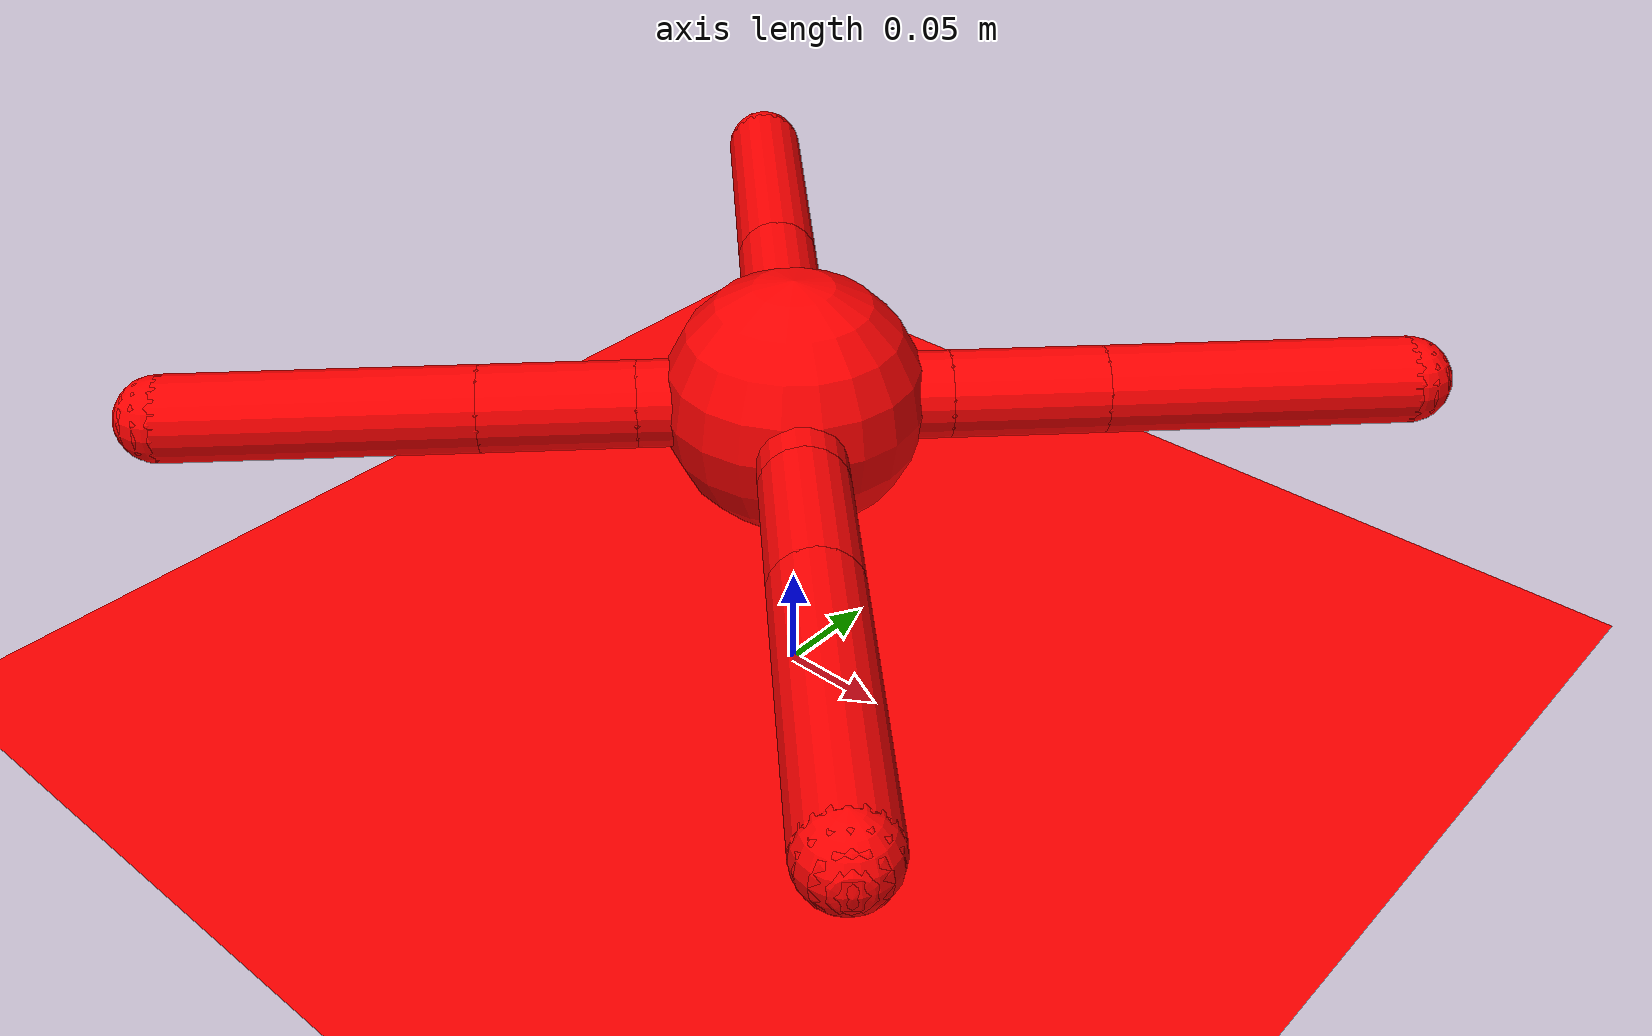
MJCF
<mujoco model="ant_tiny">
  <option timestep="0.09"/>
  <size njmax="3000" nconmax="1000"/>
  <default>
    <joint armature="1" damping="1" limited="true"/>
    <geom condim="3" density="5.0" friction="0.75 0.01 0.01"  margin="0.01" rgba="1 0 0 1" contype="0" conaffinity="0"/>
    <motor  ctrllimited="true" ctrlrange="-1.0 1.0" gear="70"/>
    <site size="0.2" type="sphere" rgba="0 0 1 0"/>
  </default>

  <worldbody>

    <geom name="floor" size="5 5 0.1" conaffinity="1" type="plane" condim="3"/>

    <body name="robot" pos="0 0 0.15">
      <site name="robot" rgba="1 0 0 .01"/>
      <camera name="vision" pos=".125 0 .2" xyaxes="0 -1 0 .4 0 1" fovy="100"/>
      <geom name="robot" pos="0 0 0" size="0.06" type="sphere"/>
      <joint armature="0" axis="1 0 0" damping="0.1" limited="false" name="robot_x" pos="0 0 0" stiffness="0" type="slide"/>
      <joint armature="0" axis="0 0 1" damping="0.01" limited="false" name="robot_z" pos="0 0 0" stiffness="0.1" type="hinge"/>
      <joint armature="0" axis="0 1 0" damping="0.1" limited="false" name="robot_y" pos="0 0 0" stiffness="0" type="slide"/>
      <body name="front_left_leg" pos="0 0 0">
        <geom fromto="0.0 0.0 0.0 0.05 0.05 0.0" name="aux_1_geom" size="0.02" type="capsule"/>
        <body name="aux_1" pos="0.05 0.05 0">
          <joint axis="0 0 1" name="hip_1" pos="0.0 0.0 0.0" range="-30 30" type="hinge"/>
          <geom fromto="0.0 0.0 0.0 0.05 0.05 0.0" name="front_left_leg_geom" size="0.02" type="capsule"/>
          <body pos="0.05 0.05 0">
            <joint axis="-1 1 0" name="ankle_1" pos="0.0 0.0 0.0" range="30 70" type="hinge"/>
            <geom fromto="0.0 0.0 0.0 0.1 0.1 0.0" name="front_left_ankle_geom" size="0.02" type="capsule"/>
            <geom type="sphere" pos="0.1 0.1 0.0" size="0.02" contype="1" conaffinity="0" />
            <site name="ankle_1a" pos="0 0 0"/>
            <site name="ankle_1b" pos="0.1 0.1 0.0"/>
          </body>
        </body>
      </body>

      <body name="front_right_leg" pos="0 0 0">
        <geom fromto="0.0 0.0 0.0 -0.05 0.05 0.0" name="aux_2_geom" size="0.02" type="capsule"/>
        <body name="aux_2" pos="-0.05 0.05 0">
          <joint axis="0 0 1" name="hip_2" pos="0.0 0.0 0.0" range="-30 30" type="hinge"/>
          <geom fromto="0.0 0.0 0.0 -0.05 0.05 0.0" name="front_right_leg_geom" size="0.02" type="capsule"/>
          <body pos="-0.05 0.05 0">
            <joint axis="1 1 0" name="ankle_2" pos="0.0 0.0 0.0" range="-70 -30" type="hinge"/>
            <geom fromto="0.0 0.0 0.0 -0.1 0.1 0.0" name="front_right_ankle_geom" size="0.02" type="capsule"/>
            <geom type="sphere" pos="-0.1 0.1 0.0" size="0.02" contype="1" conaffinity="0" />
            <site name="ankle_2a" pos="0 0 0"/>
            <site name="ankle_2b" pos="-0.1 0.1 0.0"/>
          </body>
        </body>
      </body>

      <body name="back_left_leg" pos="0 0 0">
        <geom fromto="0.0 0.0 0.0 -0.05 -0.05 0.0" name="aux_3_geom" size="0.02" type="capsule"/>
        <body name="aux_3" pos="-0.05 -0.05 0">
          <joint axis="0 0 1" name="hip_3" pos="0.0 0.0 0.0" range="-30 30" type="hinge"/>
          <geom fromto="0.0 0.0 0.0 -0.05 -0.05 0.0" name="back_left_leg_geom" size="0.02" type="capsule"/>
          <body pos="-0.05 -0.05 0">
            <joint axis="-1 1 0" name="ankle_3" pos="0.0 0.0 0.0" range="-70 -30" type="hinge"/>
            <geom fromto="0.0 0.0 0.0 -0.1 -0.1 0.0" name="back_left_ankle_geom" size="0.02" type="capsule"/>
            <geom type="sphere" pos="-0.1 -0.1 0.0" size="0.02" contype="1" conaffinity="0" />
            <site name="ankle_3a" pos="0 0 0"/>
            <site name="ankle_3b" pos="-0.1 -0.1 0.0"/>
          </body>
        </body>
      </body>
      <body name="back_right_leg" pos="0 0 0">
        <geom fromto="0.0 0.0 0.0 0.05 -0.05 0.0" name="aux_4_geom" size="0.02" type="capsule"/>
        <body name="aux_4" pos="0.05 -0.05 0">
          <joint axis="0 0 1" name="hip_4" pos="0.0 0.0 0.0" range="-30 30" type="hinge"/>
          <geom fromto="0.0 0.0 0.0 0.05 -0.05 0.0" name="back_right_leg_geom" size="0.02" type="capsule"/>
          <body pos="0.05 -0.05 0">
            <joint axis="1 1 0" name="ankle_4" pos="0.0 0.0 0.0" range="30 70" type="hinge"/>
            <geom fromto="0.0 0.0 0.0 0.1 -0.1 0.0" name="back_right_ankle_geom" size="0.02" type="capsule" />
            <geom type="sphere" pos="0.1 -0.1 0.0" size="0.02" contype="1" conaffinity="0" />
            <site name="ankle_4a" pos="0 0 0"/>
            <site name="ankle_4b" pos="0.1 -0.1 0.0"/>
          </body>
        </body>
      </body>
    </body>
  </worldbody>
  <sensor>
        <touch site="ankle_1a" name="touch_ankle_1a"/>
        <touch site="ankle_2a" name="touch_ankle_2a"/>
        <touch site="ankle_3a" name="touch_ankle_3a"/>
        <touch site="ankle_4a" name="touch_ankle_4a"/>

        <touch site="ankle_1b" name="touch_ankle_1b"/>
        <touch site="ankle_2b" name="touch_ankle_2b"/>
        <touch site="ankle_3b" name="touch_ankle_3b"/>
        <touch site="ankle_4b" name="touch_ankle_4b"/>

        <jointpos joint="hip_1" name="jointpos_hip_1"/>
        <jointpos joint="hip_2" name="jointpos_hip_2"/>
        <jointpos joint="hip_3" name="jointpos_hip_3"/>
        <jointpos joint="hip_4" name="jointpos_hip_4"/>

        <jointpos joint="ankle_1" name="jointpos_ankle_1"/>
        <jointpos joint="ankle_2" name="jointpos_ankle_2"/>
        <jointpos joint="ankle_3" name="jointpos_ankle_3"/>
        <jointpos joint="ankle_4" name="jointpos_ankle_4"/>

        <jointvel joint="hip_1" name="jointvel_hip_1"/>
        <jointvel joint="hip_2" name="jointvel_hip_2"/>
        <jointvel joint="hip_3" name="jointvel_hip_3"/>
        <jointvel joint="hip_4" name="jointvel_hip_4"/>

        <jointvel joint="ankle_1" name="jointvel_ankle_1"/>
        <jointvel joint="ankle_2" name="jointvel_ankle_2"/>
        <jointvel joint="ankle_3" name="jointvel_ankle_3"/>
        <jointvel joint="ankle_4" name="jointvel_ankle_4"/>

        <!-- Used for observation -->
        <accelerometer site="robot" name="accelerometer"/>
        <velocimeter site="robot" name="velocimeter"/>
        <gyro site="robot" name="gyro"/>
        <magnetometer site="robot" name="magnetometer"/>

        <!-- Used for intrinsic constraints -->
        <subtreecom body="robot" name="subtreecom"/>
        <subtreelinvel body="robot" name="subtreelinvel"/>
        <subtreeangmom body="robot" name="subtreeangmom"/>
  </sensor>
  <actuator>
    <motor name="hip_1" joint="hip_1"/>
    <motor name="ankle_1" joint="ankle_1"/>
    <motor name="hip_2"  joint="hip_2" />
    <motor name="ankle_2" joint="ankle_2"/>
    <motor name="hip_3" joint="hip_3"/>
    <motor name="ankle_3" joint="ankle_3"/>
    <motor name="hip_4" joint="hip_4"/>
    <motor name="ankle_4" joint="ankle_4"/>
  </actuator>
</mujoco>
